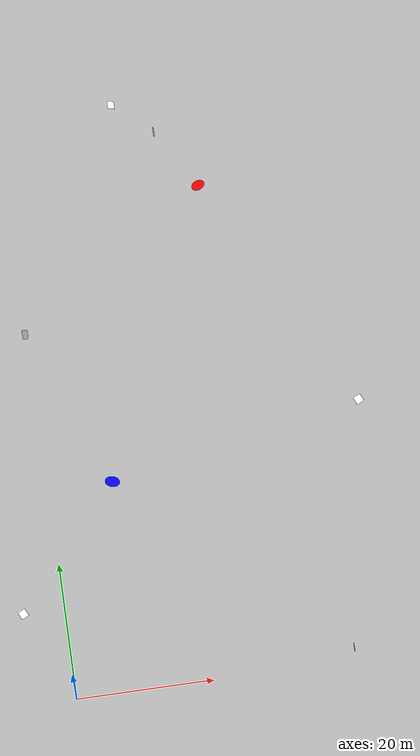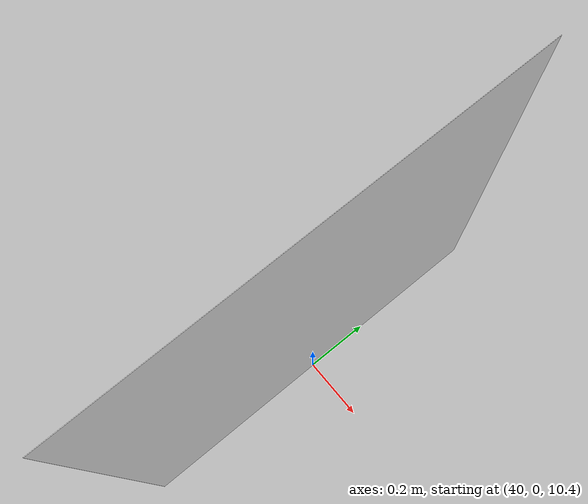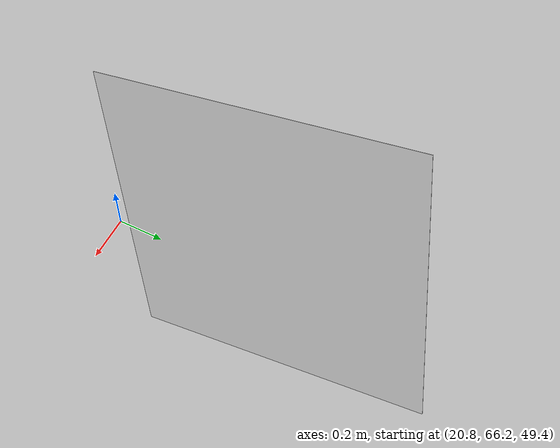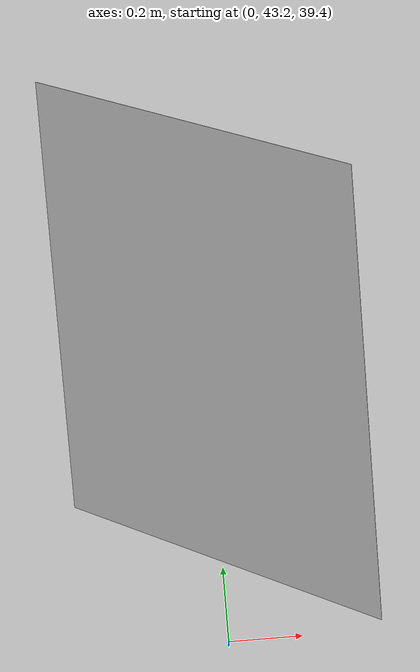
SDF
<sdf version="1.9">
 <world name="baylands">
  <physics type="ode">
   <max_step_size>0.004</max_step_size>
   <real_time_factor>1.0</real_time_factor>
   <real_time_update_rate>250</real_time_update_rate>
  </physics>
  <gravity>0 0 -9.8</gravity>
  <magnetic_field>6e-06 2.3e-05 -4.2e-05</magnetic_field>
  <atmosphere type="adiabatic"/>
  <scene>
   <ambient>0.8 0.5 1</ambient>
   <grid>false</grid>
   <sky><clouds>true</clouds></sky>
   <shadows>1</shadows>
  </scene>
  <light name="sunUTC" type="directional">
   <pose>0 0 500 0 -0 0</pose>
   <cast_shadows>false</cast_shadows>
   <intensity>1</intensity>
   <direction>0.001 0.625 -0.78</direction>
   <diffuse>0.904 0.904 0.904 1</diffuse>
   <specular>0.271 0.271 0.271 1</specular>
   <attenuation><range>2000</range><linear>0</linear><constant>1</constant><quadratic>0</quadratic></attenuation>
  </light>
  <include>
   <uri>model://qr_model_1</uri>
   <name>qr_model_1</name>
   <pose>-6.044 13.466 0.09 -1.57 0 0.45</pose>
  </include>
  <include>
   <uri>model://qr_model_2</uri>
   <name>qr_model_2</name>
   <pose>17,89 0,23 0.01 -1.57 0 0.45</pose>
  </include>
  <include>
   <uri>model://qr_model_3</uri>
   <name>qr_model_3</name>
   <pose>40,00 11,00 0.01 -1.57 0 0.45</pose>
  </include>
  <include>
   <uri>model://qr_model_4</uri>
   <name>qr_model_4</name>
   <pose>47.047 38.515 0.01 -1.57 0 0.45</pose>
  </include>
  <include>
   <uri>model://qr_model_5</uri>
   <name>qr_model_5</name>
   <pose>21,67 50,63 0.19 -1.57 0 0.45</pose>
  </include>
  <include>
   <uri>model://qr_model_6</uri>
   <name>qr_model_6</name>
   <pose>0,44 40,37 0.35 -1.57 0 0.45</pose>
  </include>
  <include><uri>model://blue_area</uri><name>blue_area</name><pose>9,21 44,56 0.25 0 0 0.45</pose></include>
  <include><uri>model://red_area</uri><name>red_area</name><pose>28,73 5,56 -0,32 0 0 0.45</pose></include>
  <spherical_coordinates>
   <surface_model>EARTH_WGS84</surface_model>
   <world_frame_orientation>ENU</world_frame_orientation>
   <latitude_deg>37.412173071650805</latitude_deg>
   <longitude_deg>-121.998878727967</longitude_deg>
   <elevation>0</elevation>
  </spherical_coordinates>
  <light name="directionallight" type="directional">
   <pose>21.187855632690464 21.140257073139729 100 0 0 0</pose>
   <intensity>1</intensity>
   <direction>0 0 -1</direction>
   <diffuse>0.800000012 0.800000012 0.800000012 1</diffuse>
   <specular>0.200000003 0.200000003 0.200000003 1</specular>
   <attenuation>
    <range>1000</range>
    <linear>0.01</linear>
    <constant>0.90000000000000002</constant>
    <quadratic>0.001</quadratic>
   </attenuation>
   <spot><inner_angle>0</inner_angle><outer_angle>0</outer_angle><falloff>0</falloff></spot>
  </light>
 </world>
</sdf>

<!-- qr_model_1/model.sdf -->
<sdf version="1.9">
  <model name="qr_model_1">
    <static>true</static>
    <pose>0 0 0.01 -1.57079632679 0 0</pose>
    <link name="link">
      <visual name="visual">
        <cast_shadows>false</cast_shadows>
        <geometry>
          <plane>
            <normal>0 -1 0</normal>
            <size>1.2 1.2</size>
          </plane>
        </geometry>
        <material>
          <ambient>1.0 1.0 1.0 1.0</ambient>
          <diffuse>1.0 1.0 1.0 1.0</diffuse>
          <specular>0.0 0.0 0.0 1.0</specular>
          <emissive>0.0 0.0 0.0 1.0</emissive>
          <pbr>
            <metal>
              <albedo_map>model://qr_model_1/materials/textures/qr_1.png</albedo_map>
              <metalness>0.0</metalness>
              <roughness>1.0</roughness>
            </metal>
          </pbr>
        </material>
      </visual>
    </link>
  </model>
</sdf>

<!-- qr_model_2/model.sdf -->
<sdf version="1.9">
  <model name="qr_model_2">
    <static>true</static>
    <pose>0 0 0.01 -1.57079632679 0 0</pose>
    <link name="link">
      <visual name="visual">
        <cast_shadows>false</cast_shadows>
        <geometry>
          <plane>
            <normal>0 -1 0</normal>
            <size>1.2 1.2</size>
          </plane>
        </geometry>
        <material>
          <ambient>1.0 1.0 1.0 1.0</ambient>
          <diffuse>1.0 1.0 1.0 1.0</diffuse>
          <specular>0.0 0.0 0.0 1.0</specular>
          <emissive>0.0 0.0 0.0 1.0</emissive>
          <pbr>
            <metal>
              <albedo_map>model://qr_model_2/materials/textures/qr_2.png</albedo_map>
              <metalness>0.0</metalness>
              <roughness>1.0</roughness>
            </metal>
          </pbr>
        </material>
      </visual>
    </link>
  </model>
</sdf>

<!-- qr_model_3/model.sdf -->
<sdf version="1.9">
  <model name="qr_model_3">
    <static>true</static>
    <pose>0 0 0.01 -1.57079632679 0 0</pose>
    <link name="link">
      <visual name="visual">
        <cast_shadows>false</cast_shadows>
        <geometry>
          <plane>
            <normal>0 -1 0</normal>
            <size>1.2 1.2</size>
          </plane>
        </geometry>
        <material>
          <ambient>1.0 1.0 1.0 1.0</ambient>
          <diffuse>1.0 1.0 1.0 1.0</diffuse>
          <specular>0.0 0.0 0.0 1.0</specular>
          <emissive>0.0 0.0 0.0 1.0</emissive>
          <pbr>
            <metal>
              <albedo_map>model://qr_model_3/materials/textures/qr_3.png</albedo_map>
              <metalness>0.0</metalness>
              <roughness>1.0</roughness>
            </metal>
          </pbr>
        </material>
      </visual>
    </link>
  </model>
</sdf>

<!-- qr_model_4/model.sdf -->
<sdf version="1.9">
  <model name="qr_model_4">
    <static>true</static>
    <pose>0 0 0.01 -1.57079632679 0 0</pose>
    <link name="link">
      <visual name="visual">
        <cast_shadows>false</cast_shadows>
        <geometry>
          <plane>
            <normal>0 -1 0</normal>
            <size>1.2 1.2</size>
          </plane>
        </geometry>
        <material>
          <ambient>1.0 1.0 1.0 1.0</ambient>
          <diffuse>1.0 1.0 1.0 1.0</diffuse>
          <specular>0.0 0.0 0.0 1.0</specular>
          <emissive>0.0 0.0 0.0 1.0</emissive>
          <pbr>
            <metal>
              <albedo_map>model://qr_model_4/materials/textures/qr_4.png</albedo_map>
              <metalness>0.0</metalness>
              <roughness>1.0</roughness>
            </metal>
          </pbr>
        </material>
      </visual>
    </link>
  </model>
</sdf>

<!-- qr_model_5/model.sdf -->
<sdf version="1.9">
  <model name="qr_model_5">
    <static>true</static>
    <pose>0 0 0.01 -1.57079632679 0 0</pose>
    <link name="link">
      <visual name="visual">
        <cast_shadows>false</cast_shadows>
        <geometry>
          <plane>
            <normal>0 -1 0</normal>
            <size>1.2 1.2</size>
          </plane>
        </geometry>
        <material>
          <ambient>1.0 1.0 1.0 1.0</ambient>
          <diffuse>1.0 1.0 1.0 1.0</diffuse>
          <specular>0.0 0.0 0.0 1.0</specular>
          <emissive>0.0 0.0 0.0 1.0</emissive>
          <pbr>
            <metal>
              <albedo_map>model://qr_model_5/materials/textures/qr_5.png</albedo_map>
              <metalness>0.0</metalness>
              <roughness>1.0</roughness>
            </metal>
          </pbr>
        </material>
      </visual>
    </link>
  </model>
</sdf>

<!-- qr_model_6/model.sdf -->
<sdf version="1.9">
  <model name="qr_model_6">
    <static>true</static>
    <pose>0 0 0.01 -1.57079632679 0 0</pose>
    <link name="link">
      <visual name="visual">
        <cast_shadows>false</cast_shadows>
        <geometry>
          <plane>
            <normal>0 -1 0</normal>
            <size>1.2 1.2</size>
          </plane>
        </geometry>
        <material>
          <ambient>1.0 1.0 1.0 1.0</ambient>
          <diffuse>1.0 1.0 1.0 1.0</diffuse>
          <specular>0.0 0.0 0.0 1.0</specular>
          <emissive>0.0 0.0 0.0 1.0</emissive>
          <pbr>
            <metal>
              <albedo_map>model://qr_model_6/materials/textures/qr_6.png</albedo_map>
              <metalness>0.0</metalness>
              <roughness>1.0</roughness>
            </metal>
          </pbr>
        </material>
      </visual>
    </link>
  </model>
</sdf>

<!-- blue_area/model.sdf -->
<sdf version="1.9">
  <model name="blue_area">
    <static>true</static>
    <pose>0 0 0.01 0 0 0</pose>
    <link name="base">
      <visual name="visual">
        <cast_shadows>false</cast_shadows>
        <geometry>
          <cylinder>
            <radius>1</radius>
            <length>0.01</length>
          </cylinder>
        </geometry>
        <material>
          <ambient>0.0 0.0 1 1.0</ambient>
          <diffuse>0.0 0.0 1 1.0</diffuse>
          <specular>0.05 0.05 0.05 1.0</specular>
        </material>
      </visual>
      <collision name="collision">
        <geometry>
          <cylinder>
            <radius>0.6</radius>
            <length>0.01</length>
          </cylinder>
        </geometry>
      </collision>
    </link>
  </model>
</sdf>

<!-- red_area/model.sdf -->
<sdf version="1.9">
  <model name="red_area">
    <static>true</static>
    <pose>0 0 0.01 0 0 0</pose>
    <link name="base">
      <visual name="visual">
        <cast_shadows>false</cast_shadows>
        <geometry>
          <cylinder>
            <radius>1</radius>
            <length>0.01</length>
          </cylinder>
        </geometry>
        <material>
          <ambient>1 0.0 0.0 1.0</ambient>
          <diffuse>1 0.0 0.0 1.0</diffuse>
          <specular>0.05 0.05 0.05 1.0</specular>
        </material>
      </visual>
      <collision name="collision">
        <geometry>
          <cylinder>
            <radius>0.6</radius>
            <length>0.01</length>
          </cylinder>
        </geometry>
      </collision>
    </link>
  </model>
</sdf>
